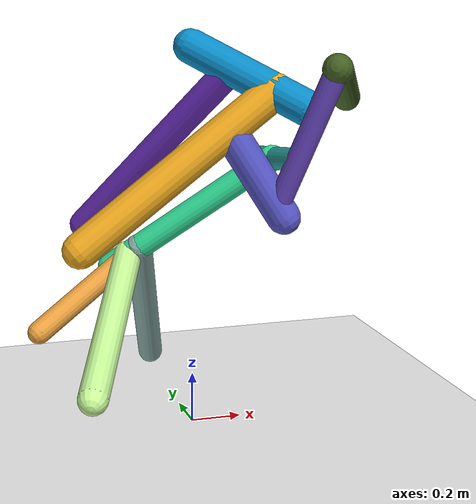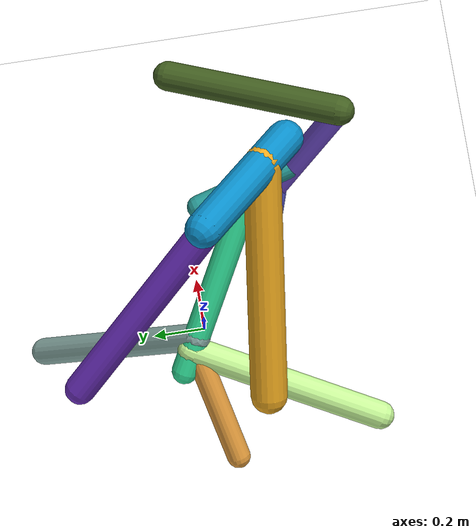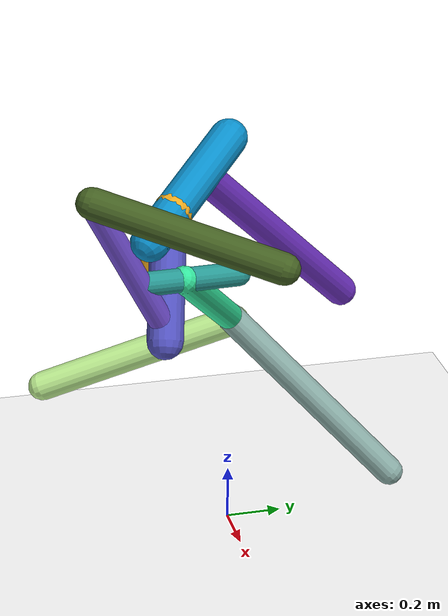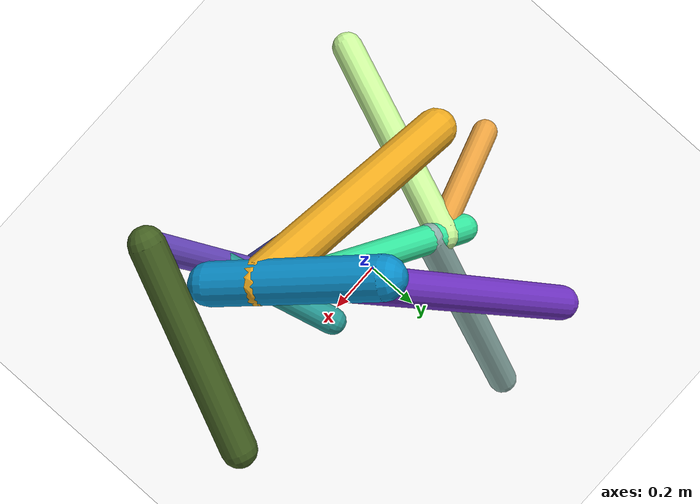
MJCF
<mujoco model="morphology">
  <option timestep="0.01"/>
  <default>
    <default class="/"/>
    <default class="0/"/>
    <default class="0/1/"/>
    <default class="0/1/2/"/>
    <default class="0/1/2/3/"/>
    <default class="0/1/2/3/4/"/>
    <default class="0/1/2/3/5/"/>
    <default class="0/1/2/3/5/6/"/>
    <default class="0/1/2/3/5/6/7/"/>
    <default class="0/1/2/3/5/6/7/8/"/>
    <default class="0/1/2/3/5/6/9/"/>
    <default class="0/10/"/>
  </default>
  <asset>
    <texture name="texplane" type="2d" builtin="checker" rgb1="0.10000000000000001 0.20000000000000001 0.29999999999999999" rgb2="0.20000000000000001 0.29999999999999999 0.40000000000000002" width="300" height="300"/>
    <material name="MatPlane" class="/" texture="texplane" texrepeat="20 20" specular="1" shininess="1" reflectance="0.5"/>
  </asset>
  <worldbody>
    <light name="//unnamed_light_0" class="/" directional="true" pos="0 0 1.5" dir="0 0 -1.3" cutoff="100" exponent="1" diffuse="1 1 1" specular="0.10000000000000001 0.10000000000000001 0.10000000000000001"/>
    <geom name="ground" class="/" type="plane" size="15 15 0.5" material="MatPlane" rgba="1 1 1 1"/>
    <site name="body" class="/" size="9.9999999999999995e-07 9.9999999999999995e-07 9.9999999999999995e-07" pos="0 0 1.5048138856887818"/>
    <body pos="0 0 1.5048138856887818" name="0/">
      <freejoint name="0/"/>
      <geom name="0/geom" class="0/" type="capsule" contype="1" conaffinity="1" condim="3" size="0.067750675422723713" rgba="0.039378560020377207 0.55946103078563791 0.7912644987516404 1" friction="0.59999999999999998 0.10000000000000001 0.10000000000000001" fromto="0 0 0 0.35115400609273695 -0.3555559341392906 -0.21199685865948326"/>
      <site name="0/end0" class="0/" size="0.0050000000000000001" pos="0.35115400609273695 -0.3555559341392906 -0.21199685865948326"/>
      <site name="0/attach1" class="0/" size="9.9999999999999995e-07 9.9999999999999995e-07 9.9999999999999995e-07" pos="0.25002914523210107 -0.25316341192921049 -0.15094628693634451"/>
      <body pos="0.25002914523210107 -0.25316341192921049 -0.15094628693634451" name="0/1/">
        <geom name="0/1/geom" class="0/1/" type="capsule" contype="1" conaffinity="1" condim="3" size="0.069454286171078669" rgba="0.93179610750514996 0.66532930035195059 0.12148172544548019 1" friction="0.59999999999999998 0.10000000000000001 0.10000000000000001" fromto="0 0 0 -0.72426017625788552 0.081821161795234243 -0.57425831797824989"/>
        <site name="0/1/end1" class="0/1/" size="0.0050000000000000001" pos="-0.72426017625788552 0.081821161795234243 -0.57425831797824989"/>
        <site name="0/1/attach2" class="0/1/" size="9.9999999999999995e-07 9.9999999999999995e-07 9.9999999999999995e-07" pos="-0.17352936580382425 0.019603969376059568 -0.13758961902504796"/>
        <body pos="-0.17352936580382425 0.019603969376059568 -0.13758961902504796" name="0/1/2/">
          <joint name="0/1/2/joint/" class="0/1/" type="hinge" axis="5.5511151231257827e-17 0.99000149670920545 0.14105685560628828" limited="true" range="-51.805881172172853 51.805881172172853"/>
          <geom name="0/1/2/geom" class="0/1/2/" type="capsule" contype="1" conaffinity="1" condim="3" size="0.0645410341432123" rgba="0.34092861968111998 0.34004274589141992 0.77933561427344367 1" friction="0.59999999999999998 0.10000000000000001 0.10000000000000001" fromto="0 0 0 0.20082222456102206 -0.057786065844968149 -0.33371991737012591"/>
          <site name="0/1/2/end2" class="0/1/2/" size="0.0050000000000000001" pos="0.20082222456102206 -0.057786065844968149 -0.33371991737012591"/>
          <site name="0/1/2/attach3" class="0/1/2/" size="9.9999999999999995e-07 9.9999999999999995e-07 9.9999999999999995e-07" pos="0.17739547889163268 -0.051045081520430365 -0.29479010446655457"/>
          <body pos="0.17739547889163268 -0.051045081520430365 -0.29479010446655457" name="0/1/2/3/">
            <joint name="0/1/2/3/joint/" class="0/1/2/" type="hinge" axis="0.86015850509262182 0.08701995949493152 0.50254837853317835" limited="true" range="-67.147383694166564 67.147383694166564"/>
            <geom name="0/1/2/3/geom" class="0/1/2/3/" type="capsule" contype="1" conaffinity="1" condim="3" size="0.044123852970732597" rgba="0.45685248061081785 0.31485437752567047 0.8307853990667784 1" friction="0.59999999999999998 0.10000000000000001 0.10000000000000001" fromto="0 0 0 0.12221763820379439 -0.27289048636497282 0.5457558943702856"/>
            <site name="0/1/2/3/end3" class="0/1/2/3/" size="0.0050000000000000001" pos="0.12221763820379439 -0.27289048636497282 0.5457558943702856"/>
            <site name="0/1/2/3/attach4" class="0/1/2/3/" size="9.9999999999999995e-07 9.9999999999999995e-07 9.9999999999999995e-07" pos="0.12064885701427916 -0.26938767393872404 0.53875059142270676"/>
            <body pos="0.12064885701427916 -0.26938767393872404 0.53875059142270676" name="0/1/2/3/4/">
              <joint name="0/1/2/3/4/joint/" class="0/1/2/3/" type="hinge" axis="0 0.89441897085125466 0.44723003541956174" limited="true" range="-37.656801273434148 37.656801273434148"/>
              <geom name="0/1/2/3/4/geom" class="0/1/2/3/4/" type="capsule" contype="1" conaffinity="1" condim="3" size="0.05514735527843579" rgba="0.26651623098615651 0.3781388334353194 0.1341705122242256 1" friction="0.59999999999999998 0.10000000000000001 0.10000000000000001" fromto="0 0 0 0.27910502815935745 0.58299049162415129 -0.17517823648685171"/>
              <site name="0/1/2/3/4/end4" class="0/1/2/3/4/" size="0.0050000000000000001" pos="0.27910502815935745 0.58299049162415129 -0.17517823648685171"/>
            </body>
            <site name="0/1/2/3/attach5" class="0/1/2/3/" size="9.9999999999999995e-07 9.9999999999999995e-07 9.9999999999999995e-07" pos="0.043352489843140281 -0.096798483527394855 0.1935880713720681"/>
            <body pos="0.043352489843140281 -0.096798483527394855 0.1935880713720681" name="0/1/2/3/5/">
              <joint name="0/1/2/3/5/joint/" class="0/1/2/3/" type="hinge" axis="0.98052445766891561 0.08783464444403577 -0.17566121697309439" limited="true" range="-55.90716460104322 55.90716460104322"/>
              <geom name="0/1/2/3/5/geom" class="0/1/2/3/5/" type="capsule" contype="1" conaffinity="1" condim="3" size="0.043046454575953977" rgba="0.15706439755210944 0.60234569616079503 0.58373300827107566 1" friction="0.59999999999999998 0.10000000000000001 0.10000000000000001" fromto="0 0 0 -0.094392025560534387 0.36839054532852478 -0.037723312480327675"/>
              <site name="0/1/2/3/5/end5" class="0/1/2/3/5/" size="0.0050000000000000001" pos="-0.094392025560534387 0.36839054532852478 -0.037723312480327675"/>
              <site name="0/1/2/3/5/attach6" class="0/1/2/3/5/" size="9.9999999999999995e-07 9.9999999999999995e-07 9.9999999999999995e-07" pos="-0.042140914584793979 0.16446637745451459 -0.016841410909966083"/>
              <body pos="-0.042140914584793979 0.16446637745451459 -0.016841410909966083" name="0/1/2/3/5/6/">
                <joint name="0/1/2/3/5/6/joint/" class="0/1/2/3/5/" type="hinge" axis="1.3877787807814457e-17 0.10186763704542173 0.99479796165994516" limited="true" range="-58.273484694492055 58.273484694492055"/>
                <geom name="0/1/2/3/5/6/geom" class="0/1/2/3/5/6/" type="capsule" contype="1" conaffinity="1" condim="3" size="0.049697818038163304" rgba="0.20163439574473596 0.89433637515479347 0.61529968997065876 1" friction="0.59999999999999998 0.10000000000000001 0.10000000000000001" fromto="0 0 0 -0.55637964036044707 0.33618555403325034 -0.46018023177206835"/>
                <site name="0/1/2/3/5/6/end6" class="0/1/2/3/5/6/" size="0.0050000000000000001" pos="-0.55637964036044707 0.33618555403325034 -0.46018023177206835"/>
                <site name="0/1/2/3/5/6/attach7" class="0/1/2/3/5/6/" size="9.9999999999999995e-07 9.9999999999999995e-07 9.9999999999999995e-07" pos="-0.49375413179024968 0.29834486079428441 -0.40838282770097967"/>
                <body pos="-0.49375413179024968 0.29834486079428441 -0.40838282770097967" name="0/1/2/3/5/6/7/">
                  <geom name="0/1/2/3/5/6/7/geom" class="0/1/2/3/5/6/7/" type="capsule" contype="1" conaffinity="1" condim="3" size="0.055102846467219718" rgba="0.79159022553718361 0.99237568368028173 0.60665828982257064 1" friction="0.59999999999999998 0.10000000000000001 0.10000000000000001" fromto="0 0 0 -0.28493705300787486 -0.68075206708755542 -0.33412636432559434"/>
                  <site name="0/1/2/3/5/6/7/end7" class="0/1/2/3/5/6/7/" size="0.0050000000000000001" pos="-0.28493705300787486 -0.68075206708755542 -0.33412636432559434"/>
                  <site name="0/1/2/3/5/6/7/attach8" class="0/1/2/3/5/6/7/" size="9.9999999999999995e-07 9.9999999999999995e-07 9.9999999999999995e-07" pos="-0.0064842641133138566 -0.015491759152004941 -0.0076036569152296406"/>
                  <body pos="-0.0064842641133138566 -0.015491759152004941 -0.0076036569152296406" name="0/1/2/3/5/6/7/8/">
                    <joint name="0/1/2/3/5/6/7/8/joint/" class="0/1/2/3/5/6/7/" type="hinge" axis="0.9361003105455783 -0.31575065004897701 -0.15497656464807869" limited="true" range="-61.682763891647795 61.682763891647795"/>
                    <geom name="0/1/2/3/5/6/7/8/geom" class="0/1/2/3/5/6/7/8/" type="capsule" contype="1" conaffinity="1" condim="3" size="0.044935037178093787" rgba="0.90839941140076996 0.62618413328550648 0.24478918426719132 1" friction="0.59999999999999998 0.10000000000000001 0.10000000000000001" fromto="0 0 0 -0.370085253138623 -0.10339566976079118 -0.24419260607635673"/>
                    <site name="0/1/2/3/5/6/7/8/end8" class="0/1/2/3/5/6/7/8/" size="0.0050000000000000001" pos="-0.370085253138623 -0.10339566976079118 -0.24419260607635673"/>
                  </body>
                </body>
                <site name="0/1/2/3/5/6/attach9" class="0/1/2/3/5/6/" size="9.9999999999999995e-07 9.9999999999999995e-07 9.9999999999999995e-07" pos="-0.45393516279182128 0.27428473856354085 -0.37544865640249259"/>
                <body pos="-0.45393516279182128 0.27428473856354085 -0.37544865640249259" name="0/1/2/3/5/6/9/">
                  <joint name="0/1/2/3/5/6/9/joint/" class="0/1/2/3/5/6/" type="hinge" axis="-0.71554395108074553 -0.41208663158140557 0.56407575922356967" limited="true" range="-69.720510534845644 69.720510534845644"/>
                  <geom name="0/1/2/3/5/6/9/geom" class="0/1/2/3/5/6/9/" type="capsule" contype="1" conaffinity="1" condim="3" size="0.05235680004135633" rgba="0.54820434994567757 0.68453855739250868 0.66054635078203428 1" friction="0.59999999999999998 0.10000000000000001 0.10000000000000001" fromto="0 0 0 0.18199096222090994 0.57475817078003377 -0.62278587395509244"/>
                  <site name="0/1/2/3/5/6/9/end9" class="0/1/2/3/5/6/9/" size="0.0050000000000000001" pos="0.18199096222090994 0.57475817078003377 -0.62278587395509244"/>
                </body>
              </body>
            </body>
          </body>
        </body>
      </body>
      <site name="0/attach10" class="0/" size="9.9999999999999995e-07 9.9999999999999995e-07 9.9999999999999995e-07" pos="0.12424220986803711 -0.12579966118197566 -0.075006856672397496"/>
      <body pos="0.12424220986803711 -0.12579966118197566 -0.075006856672397496" name="0/10/">
        <joint name="0/10/joint/" class="0/" type="hinge" axis="0 0 1" limited="true" range="-67.897848706556516 67.897848706556516"/>
        <geom name="0/10/geom" class="0/10/" type="capsule" contype="1" conaffinity="1" condim="3" size="0.058139338631043466" rgba="0.44705993672785183 0.19999866728701032 0.78107551304779599 1" friction="0.59999999999999998 0.10000000000000001 0.10000000000000001" fromto="0 0 0 -0.45363098348322889 0.64395032360236582 -0.70381581761879142"/>
        <site name="0/10/end10" class="0/10/" size="0.0050000000000000001" pos="-0.45363098348322889 0.64395032360236582 -0.70381581761879142"/>
      </body>
      <camera name="0/iso" class="0/" mode="trackcom" pos="-2.2999999999999998 -2.2999999999999998 1" xyaxes="0.45000000000000001 -0.45000000000000001 0 0.29999999999999999 0.14999999999999999 0.93999999999999995"/>
    </body>
  </worldbody>
  <actuator>
    <motor name="0/1/2/motor" class="0/1/2/" ctrllimited="true" ctrlrange="-1 1" gear="73" joint="0/1/2/joint/"/>
    <motor name="0/1/2/3/motor" class="0/1/2/3/" ctrllimited="true" ctrlrange="-1 1" gear="59" joint="0/1/2/3/joint/"/>
    <motor name="0/1/2/3/4/motor" class="0/1/2/3/4/" ctrllimited="true" ctrlrange="-1 1" gear="76" joint="0/1/2/3/4/joint/"/>
    <motor name="0/1/2/3/5/motor" class="0/1/2/3/5/" ctrllimited="true" ctrlrange="-1 1" gear="88" joint="0/1/2/3/5/joint/"/>
    <motor name="0/1/2/3/5/6/motor" class="0/1/2/3/5/6/" ctrllimited="true" ctrlrange="-1 1" gear="68" joint="0/1/2/3/5/6/joint/"/>
    <motor name="0/1/2/3/5/6/7/8/motor" class="0/1/2/3/5/6/7/8/" ctrllimited="true" ctrlrange="-1 1" gear="98" joint="0/1/2/3/5/6/7/8/joint/"/>
    <motor name="0/1/2/3/5/6/9/motor" class="0/1/2/3/5/6/9/" ctrllimited="true" ctrlrange="-1 1" gear="69" joint="0/1/2/3/5/6/9/joint/"/>
    <motor name="0/10/motor" class="0/10/" ctrllimited="true" ctrlrange="-1 1" gear="67" joint="0/10/joint/"/>
  </actuator>
  <sensor>
    <subtreelinvel name="velocity" body="0/"/>
  </sensor>
</mujoco>
